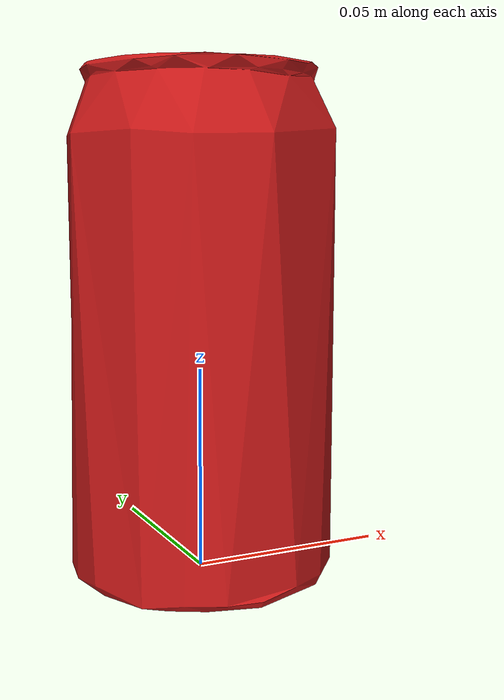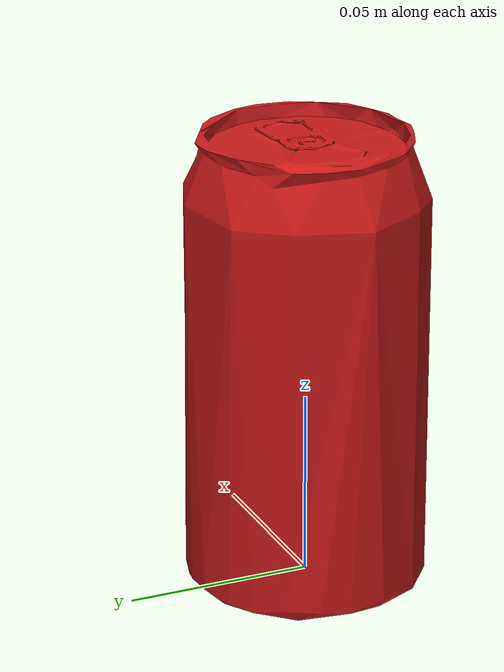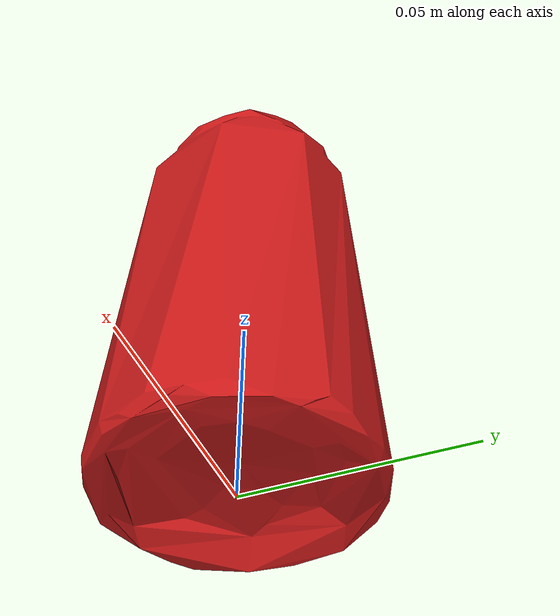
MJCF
<mujoco model="can">
  <compiler angle="radian"/>

  <asset>
    <!-- Visual mesh -->
    <mesh name="can_visual" file="can_visual.stl" scale="1 1 1"/>
  </asset>

  <worldbody>
    <body name="can" pos="0 0 0.0615">
      <freejoint name="can_joint"/>

      <!-- Collision geometry - simple cylinder for efficiency -->
      <geom name="can_collision"
            type="cylinder"
            size="0.033 0.0615"
            mass="0.05"
            friction="0.6 0.005 0.0001"
            contype="1"
            conaffinity="1"
            rgba="0 0 0 0"/>  <!-- Invisible - visual mesh will show -->

      <!-- Visual mesh -->
      <geom name="can_visual"
            type="mesh"
            mesh="can_visual"
            rgba="0.8 0.1 0.1 1"/>
    </body>
  </worldbody>
</mujoco>
